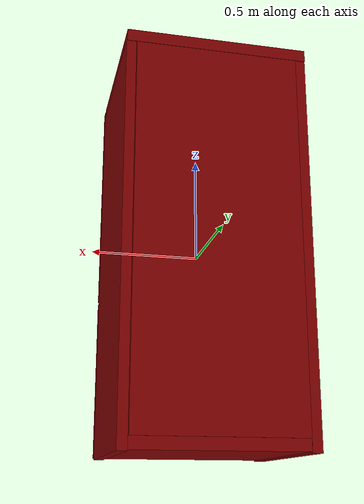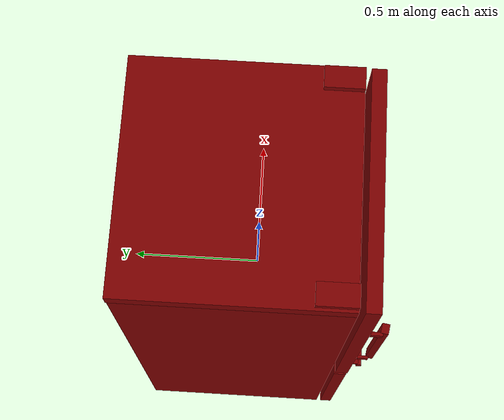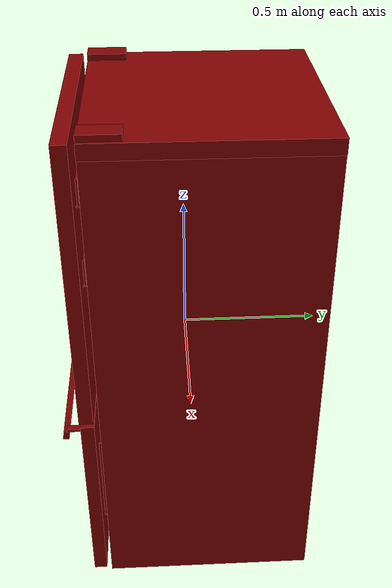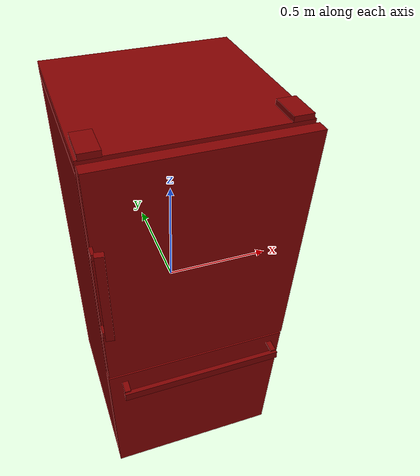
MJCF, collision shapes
<mujoco model="model">
  <compiler angle="radian"/>
  <asset>
    <mesh file="visuals/Body001.obj" name="Body001_vis"/>
    <mesh file="visuals/Body001_Clear.obj" name="Body001_Clear_vis"/>
    <mesh file="visuals/Door001.obj" name="Door001_vis"/>
    <mesh file="visuals/Drawer001.obj" name="Drawer001_vis"/>
    <mesh file="visuals/Drawer002.obj" name="Drawer002_vis"/>
    <texture file="visuals/T_BC001.png" name="Body001_material" type="2d"/>
    <material name="Body001_material" rgba="1 1 1 1.0" texture="Body001_material" shininess="0.4472135901451111" specular="1"/>
    <texture file="visuals/T_BC001.png" name="Body001_Clear_material" type="2d"/>
    <material name="Body001_Clear_material" rgba="1 1 1 0.30000001192092896" texture="Body001_Clear_material" shininess="0.5" specular="0.3103448502657381"/>
    <texture file="visuals/T_BC001.png" name="Door001_material" type="2d"/>
    <material name="Door001_material" rgba="1 1 1 1.0" texture="Door001_material" shininess="0.4472135901451111" specular="1"/>
    <texture file="visuals/T_BC001.png" name="Drawer001_material" type="2d"/>
    <material name="Drawer001_material" rgba="1 1 1 1.0" texture="Drawer001_material" shininess="0.4472135901451111" specular="1"/>
    <texture file="visuals/T_BC001.png" name="Drawer002_material" type="2d"/>
    <material name="Drawer002_material" rgba="1 1 1 1.0" texture="Drawer002_material" shininess="0.4472135901451111" specular="0.3103448502657381"/>
  </asset>
  <default>
    <default class="visual">
      <geom conaffinity="0" contype="0" group="1" type="mesh"/>
    </default>
    <default class="collision">
      <geom group="0" rgba="0.5 0 0 0.5"/>
    </default>
    <default class="spawn">
      <geom group="0" rgba="1 1 1 0.5" contype="0" conaffinity="0"/>
      <site group="0" rgba="1 1 1 0.5"/>
    </default>
    <default class="region">
      <geom group="1" conaffinity="0" contype="0" rgba="0 1 0 0"/>
    </default>
  </default>
  <worldbody>
    <body>
      <body name="object">
        <geom mesh="Body001_vis" type="mesh" solimp="0.998 0.998 0.001" solref="0.001 1" density="100" friction="0.95 0.3 0.1" class="visual" material="Body001_material"/>
        <geom class="collision" type="box" pos="-0.395664 0.069501 -0.035642" size="0.022913169115781784 0.39667078852653503 0.8990462422370911" quat="1.0 0.0 0.0 0.0"/>
        <geom class="collision" type="box" pos="0.403885 0.070966 -0.035975" size="0.022152194753289223 0.3963577151298523 0.8981515169143677" quat="1.0 0.0 0.0 0.0"/>
        <geom class="collision" type="box" pos="0.001653 0.071334 0.887607" size="0.4207570254802704 0.39794018864631653 0.02789568342268467" quat="1.0 0.0 0.0 0.0"/>
        <geom class="collision" type="box" pos="0.004688 0.071000 -0.901864" size="0.3776070177555084 0.39373672008514404 0.02701226808130741" quat="1.0 0.0 0.0 0.0"/>
        <geom class="collision" type="box" pos="0.008426 -0.022006 0.139015" size="0.3821915090084076 0.2994949221611023 0.02570364437997341" quat="1.0 0.0 0.0 0.0"/>
        <geom class="collision" type="box" pos="0.002596 0.373211 -0.006292" size="0.3755362629890442 0.09427539259195328 0.8687321543693542" quat="3.1391647326017846e-07 1.0 0.0 0.0"/>
        <geom class="collision" type="box" pos="-0.368659 -0.258095 0.925331" size="0.03959636390209198 0.06952385604381561 0.012179031036794186" quat="1.0 0.0 0.0 0.0"/>
        <geom class="collision" type="box" pos="0.373017 -0.257418 0.925102" size="0.0395231693983078 0.06911013275384903 0.01264791376888752" quat="1.0 0.0 0.0 0.0"/>
        <geom class="collision" type="box" pos="0.007208 0.017309 -0.148728" size="0.3804530203342438 0.346701443195343 0.03384808078408241" quat="1.0 0.0 0.0 0.0"/>
        <geom class="collision" type="box" pos="0.007208 -0.282898 0.521076" size="0.3804530203342438 0.015593416057527065 0.0045109703205525875" quat="1.0 0.0 0.0 0.0"/>
        <geom class="collision" type="box" pos="0.364349 -0.016729 -0.698006" size="0.020433694124221802 0.2735162377357483 0.008951575495302677" quat="1.0 0.0 0.0 0.0"/>
        <geom class="collision" type="box" pos="-0.359446 -0.016729 -0.698006" size="0.016302676871418953 0.2735162377357483 0.008951575495302677" quat="1.0 0.0 0.0 0.0"/>
        <body name="Body001_Clear">
          <geom mesh="Body001_Clear_vis" type="mesh" solimp="0.998 0.998 0.001" solref="0.001 1" density="100" friction="0.95 0.3 0.1" class="visual" material="Body001_Clear_material"/>
          <geom class="collision" type="box" pos="0.004455 0.005388 0.520749" size="0.37758466601371765 0.2747921347618103 0.003323649987578392" quat="1.0 0.0 0.0 0.0"/>
        </body>
        <body name="Door001">
          <joint axis="0.0 0.0 1.0" pos="0.391582 -0.367582 0.382577" limited="true" name="Door001_joint" range="0.0 1.5707963267948966" type="hinge" damping="1" frictionloss="1" armature=".01" stiffness="0.05"/>
          <geom mesh="Door001_vis" type="mesh" solimp="0.998 0.998 0.001" solref="0.001 1" density="100" friction="0.95 0.3 0.1" class="visual" material="Door001_material"/>
          <geom class="collision" type="box" pos="0.002565 -0.373443 0.382196" size="0.42002275586128235 0.025710761547088623 0.530463695526123" quat="3.1391647326017846e-07 0.0 0.0 1.0"/>
          <geom class="collision" type="box" pos="-0.000050 -0.267690 0.420919" size="0.32674068212509155 0.003287653438746929 0.04923586919903755" quat="1.0 0.0 0.0 0.0"/>
          <geom class="collision" type="box" pos="-0.415522 -0.419669 0.611510" size="0.006407890934497118 0.0208421777933836 0.01343459915369749" quat="3.1391647326017846e-07 1.0 0.0 0.0"/>
          <geom class="collision" type="box" pos="-0.416578 -0.419504 0.201060" size="0.00548302847892046 0.0207635797560215 0.013752744533121586" quat="3.1391647326017846e-07 1.0 0.0 0.0"/>
          <geom class="collision" type="box" pos="-0.396629 -0.448173 0.406204" size="0.013300185091793537 0.017666669562458992 0.2206582874059677" quat="2.3925022674120555e-07 0.7621461153030396 0.6474050283432007 2.0323111016296025e-07"/>
          <geom class="collision" type="box" pos="-0.000050 -0.340454 0.420919" size="0.32674068212509155 0.003287653438746929 0.04923586919903755" quat="1.0 0.0 0.0 0.0"/>
          <geom class="collision" type="box" pos="0.322601 -0.303078 0.420919" size="0.0022356424015015364 0.033304814249277115 0.04923586919903755" quat="1.0 0.0 0.0 0.0"/>
          <geom class="collision" type="box" pos="-0.324358 -0.303078 0.420919" size="0.0022356424015015364 0.033304814249277115 0.04923586919903755" quat="1.0 0.0 0.0 0.0"/>
          <geom class="collision" type="box" pos="-0.000050 -0.308707 0.374536" size="0.32674068212509155 0.04224937781691551 0.0028528415132313967" quat="1.0 0.0 0.0 0.0"/>
          <geom class="collision" type="box" pos="-0.000050 -0.308707 0.666899" size="0.32674068212509155 0.04224937781691551 0.0028528443071991205" quat="1.0 0.0 0.0 0.0"/>
          <geom class="collision" type="box" pos="-0.324358 -0.303078 0.713282" size="0.0022356424015015364 0.033304814249277115 0.04923586547374725" quat="1.0 0.0 0.0 0.0"/>
          <geom class="collision" type="box" pos="0.322601 -0.303078 0.713282" size="0.0022356424015015364 0.033304814249277115 0.04923586547374725" quat="1.0 0.0 0.0 0.0"/>
          <geom class="collision" type="box" pos="-0.000050 -0.340454 0.713282" size="0.32674068212509155 0.003287653438746929 0.04923586919903755" quat="1.0 0.0 0.0 0.0"/>
          <geom class="collision" type="box" pos="-0.000050 -0.267690 0.713282" size="0.32674068212509155 0.003287653438746929 0.04923586919903755" quat="1.0 0.0 0.0 0.0"/>
        </body>
        <body name="Drawer001">
          <joint axis="0.0 -1.0 0.0" pos="0.002467 -0.131733 -0.537126" limited="true" name="Drawer001_joint" range="0.0 0.4" type="slide" damping="1" frictionloss="1" armature=".01" stiffness="0.05"/>
          <geom mesh="Drawer001_vis" type="mesh" solimp="0.998 0.998 0.001" solref="0.001 1" density="100" friction="0.95 0.3 0.1" class="visual" material="Drawer001_material"/>
          <geom class="collision" type="box" pos="0.001442 -0.370230 -0.544305" size="0.4214746952056885 0.024916762486100197 0.3797958195209503" quat="3.1391647326017846e-07 0.0 0.0 1.0"/>
          <geom class="collision" type="box" pos="0.365109 -0.416952 -0.217027" size="0.005502200219780207 0.03214182332158089 0.012591847218573093" quat="2.2197248483735166e-07 0.7071068286895752 2.2197245641564223e-07 -0.7071067690849304"/>
          <geom class="collision" type="box" pos="-0.349607 -0.416952 -0.217708" size="0.0058198533952236176 0.03214182332158089 0.013519244268536568" quat="2.2197248483735166e-07 0.7071068286895752 2.2197245641564223e-07 -0.7071067690849304"/>
          <geom class="collision" type="box" pos="0.007265 -0.453272 -0.237000" size="0.01135221403092146 0.017708100378513336 0.372952938079834" quat="0.4577842354774475 -0.5389187932014465 -0.4577847123146057 0.5389186143875122"/>
          <geom class="collision" type="box" pos="0.355826 -0.070842 -0.489955" size="0.2693040370941162 0.00428370013833046 0.19067460298538208" quat="0.70710688829422 0.0 0.0 -0.7071066498756409"/>
          <geom class="collision" type="box" pos="-0.350094 -0.072022 -0.490997" size="0.27165547013282776 0.004035268444567919 0.19088585674762726" quat="0.70710688829422 0.0 0.0 -0.7071066498756409"/>
          <geom class="collision" type="box" pos="0.004477 0.199147 -0.492397" size="0.35604700446128845 0.002275570761412382 0.19196023046970367" quat="3.1391647326017846e-07 0.0 0.0 1.0"/>
          <geom class="collision" type="box" pos="0.002914 -0.072557 -0.684301" size="0.35675811767578125 0.26802751421928406 0.0031557735055685043" quat="3.1391647326017846e-07 0.0 1.0 0.0"/>
        </body>
        <body name="Drawer002">
          <joint axis="0.0 -1.0 0.0" pos="-0.016686 -0.026934 -0.017409" limited="true" name="Drawer002_joint" range="0.0 0.5" type="slide" damping="1" frictionloss="1" armature=".01" stiffness="0.05"/>
          <geom mesh="Drawer002_vis" type="mesh" solimp="0.998 0.998 0.001" solref="0.001 1" density="100" friction="0.95 0.3 0.1" class="visual" material="Drawer002_material"/>
          <geom class="collision" type="box" pos="0.316011 -0.014067 -0.012558" size="0.009566817432641983 0.2545154392719269 0.08353973925113678" quat="1.0 -1.410649872468639e-07 0.0 0.0"/>
          <geom class="collision" type="box" pos="-0.016478 0.250946 -0.008135" size="0.34095457196235657 0.011887704953551292 0.07921215891838074" quat="1.0 -1.410649872468639e-07 0.0 0.0"/>
          <geom class="collision" type="box" pos="-0.016330 -0.273693 -0.011684" size="0.3408662676811218 0.012720691971480846 0.08273868262767792" quat="1.0 -1.410649872468639e-07 0.0 0.0"/>
          <geom class="collision" type="box" pos="-0.347835 -0.014067 -0.012558" size="0.010321862064301968 0.2545155882835388 0.08353979885578156" quat="1.0 -1.410649872468639e-07 0.0 0.0"/>
          <geom class="collision" type="box" pos="-0.016592 -0.011411 -0.076495" size="0.341022253036499 0.27389633655548096 0.02545464038848877" quat="1.0 -1.410649872468639e-07 0.0 0.0"/>
          <geom class="collision" type="box" pos="-0.016714 -0.299057 0.063567" size="0.3385600447654724 0.005844410043209791 0.017213759943842888" quat="0.7071068286895752 0.7071067690849304 0.0 0.0"/>
          <geom class="collision" type="box" pos="-0.016714 -0.312260 0.045110" size="0.3385600447654724 0.013608235865831375 0.004010598175227642" quat="0.7071068286895752 0.7071067690849304 0.0 0.0"/>
        </body>
        <geom class="region" name="reg_main" type="box" pos="0.0 0.03370900000000002 0.0" size="0.421916 0.430833 0.93716"/>
      </body>
    </body>
  </worldbody>
  <actuator>
    <motor name="Door001_joint_actuator" joint="Door001_joint" gear="50"/>
    <motor name="Drawer001_joint_actuator" joint="Drawer001_joint" gear="50"/>
    <motor name="Drawer002_joint_actuator" joint="Drawer002_joint" gear="50"/>
  </actuator>
</mujoco>
